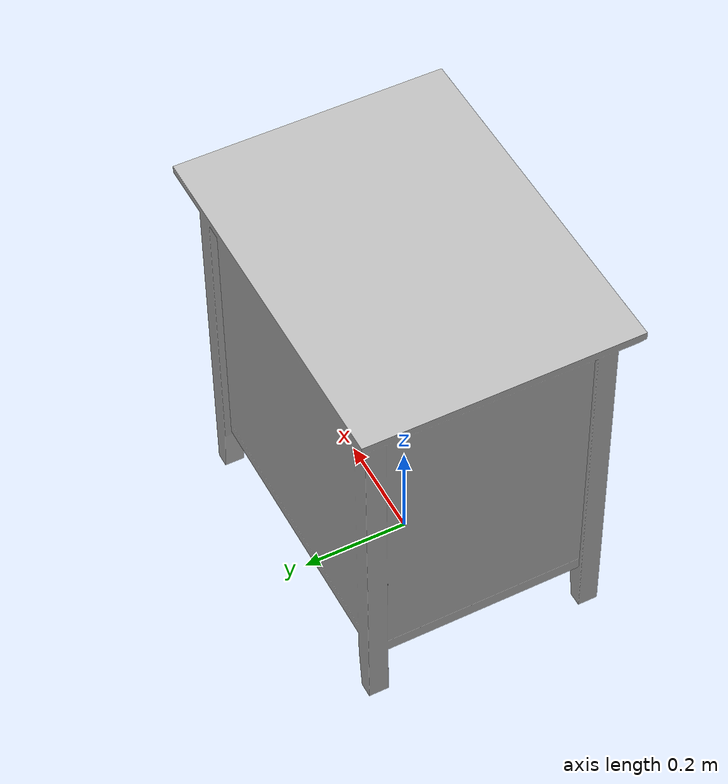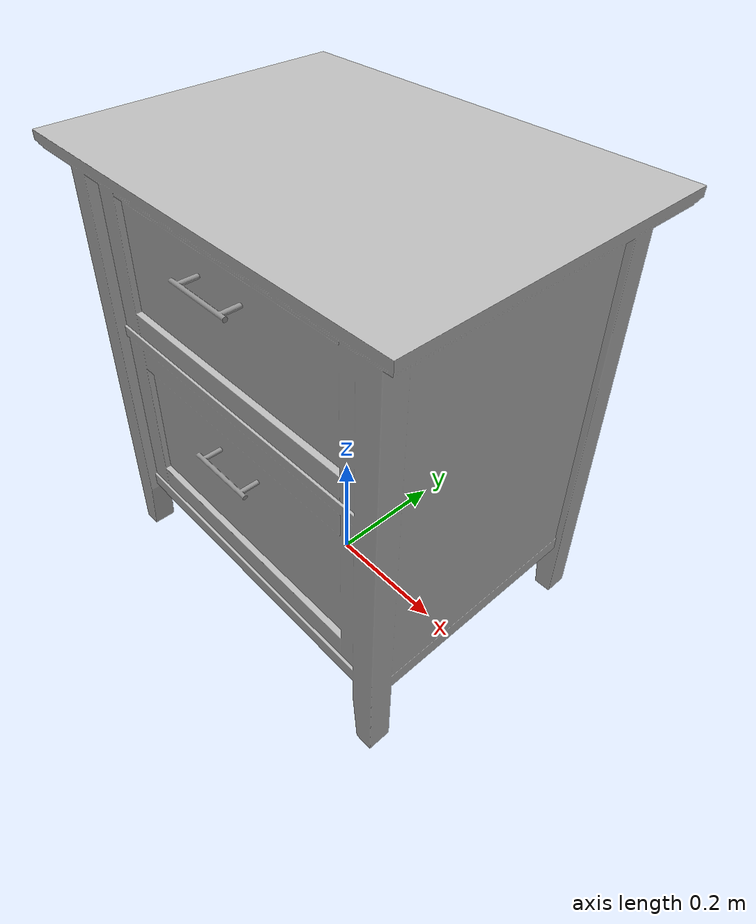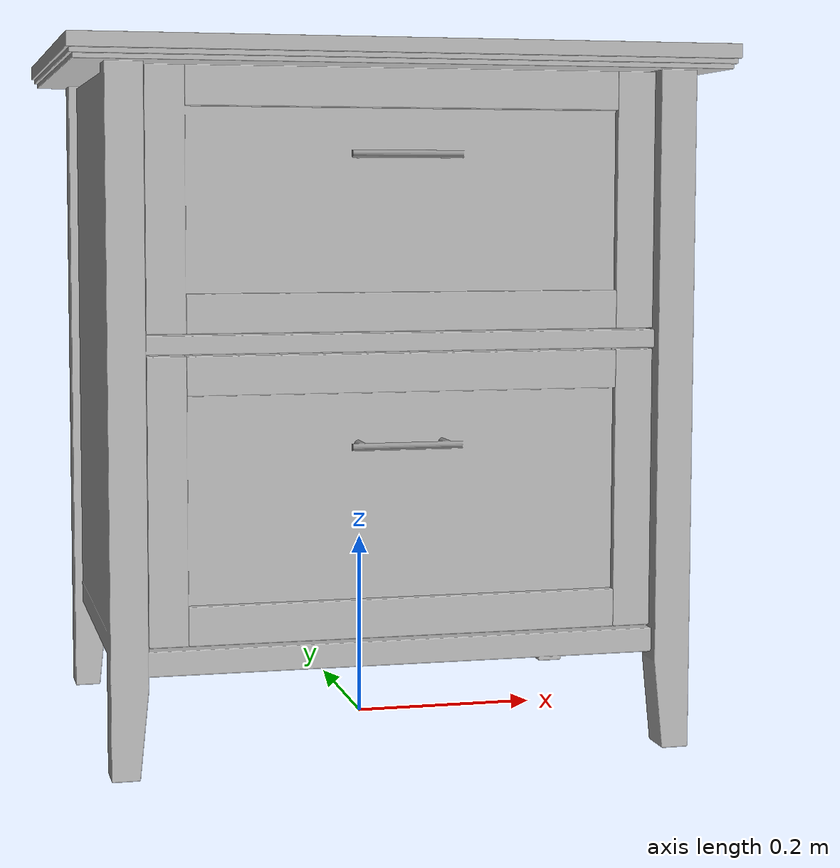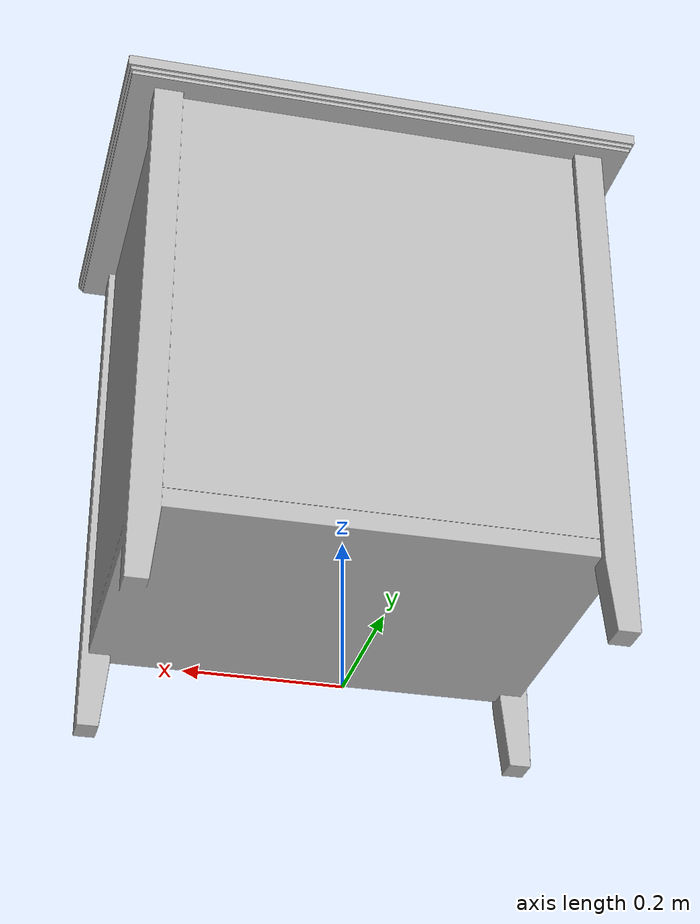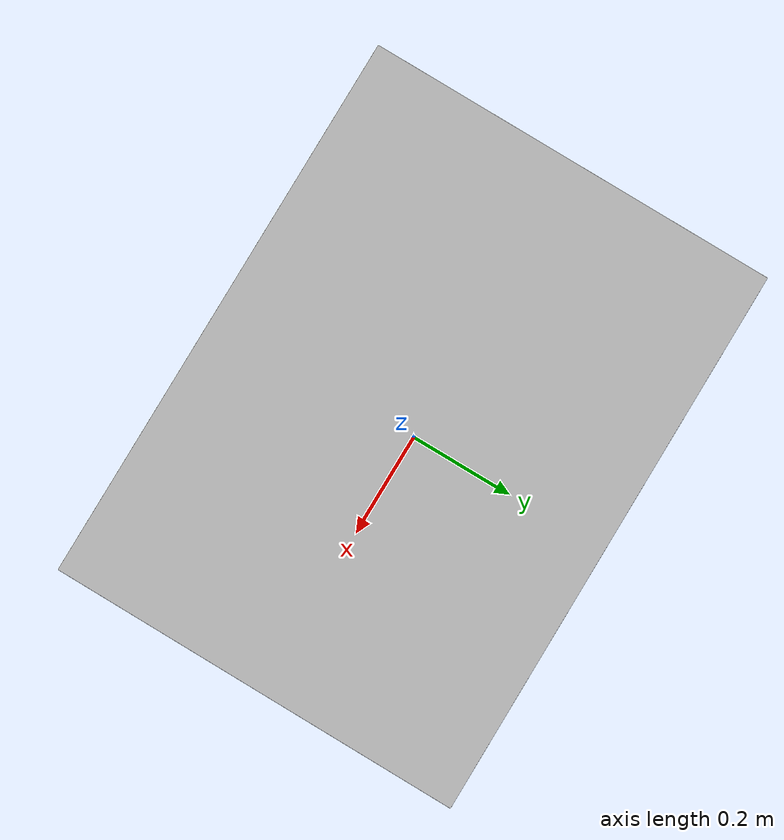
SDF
<?xml version="1.0" ?>
<sdf version="1.6">
  <model name="cabinet">
    <static>true</static>
    <link name="link">
      <collision name="collision">
        <geometry>
          <mesh>
            <uri>model://cabinet/meshes/model.dae</uri>
          </mesh>
        </geometry>
      </collision>
      <visual name="visual">
        <geometry>
          <mesh>
            <uri>model://cabinet/meshes/model.dae</uri>
          </mesh>
        </geometry>
      </visual>
    </link>
  </model>
</sdf>
